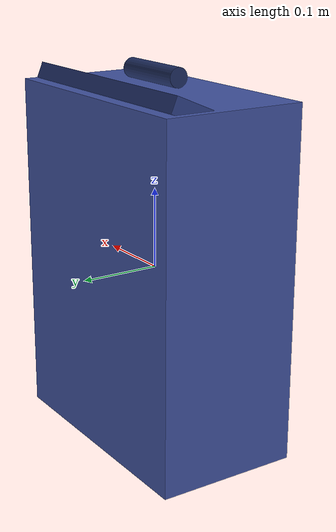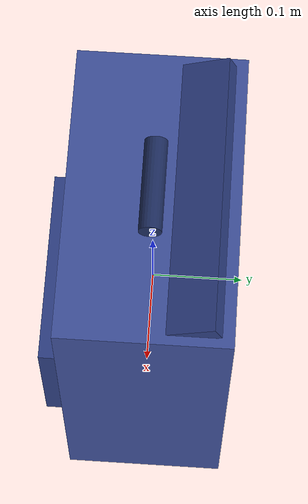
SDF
<?xml version="1.0"?>
<!-- Mochila abierta — cuerpo azul + bolsillo frontal + asa.
     Spawnea con el centro a z≈0.22 para que toque el suelo. -->
<sdf version="1.8">
  <model name="backpack">
    <static>true</static>
    <link name="body">
      <collision name="c">
        <geometry><box><size>0.32 0.18 0.44</size></box></geometry>
      </collision>
      <visual name="body_v">
        <geometry><box><size>0.32 0.18 0.44</size></box></geometry>
        <material>
          <ambient>0.18 0.22 0.42 1</ambient>
          <diffuse>0.25 0.32 0.62 1</diffuse>
        </material>
      </visual>
      <visual name="front_pocket">
        <pose>0 -0.10 -0.08 0 0 0</pose>
        <geometry><box><size>0.22 0.04 0.18</size></box></geometry>
        <material>
          <ambient>0.13 0.18 0.38 1</ambient>
          <diffuse>0.18 0.25 0.52 1</diffuse>
        </material>
      </visual>
      <visual name="open_flap">
        <pose>0 0 0.20 0.4 0 0</pose>
        <geometry><box><size>0.30 0.16 0.02</size></box></geometry>
        <material>
          <ambient>0.13 0.18 0.38 1</ambient>
          <diffuse>0.18 0.25 0.52 1</diffuse>
        </material>
      </visual>
      <visual name="handle">
        <pose>0 0 0.24 0 1.5708 0</pose>
        <geometry><cylinder><radius>0.012</radius><length>0.10</length></cylinder></geometry>
        <material>
          <ambient>0.08 0.12 0.28 1</ambient>
          <diffuse>0.12 0.18 0.38 1</diffuse>
        </material>
      </visual>
    </link>
  </model>
</sdf>
